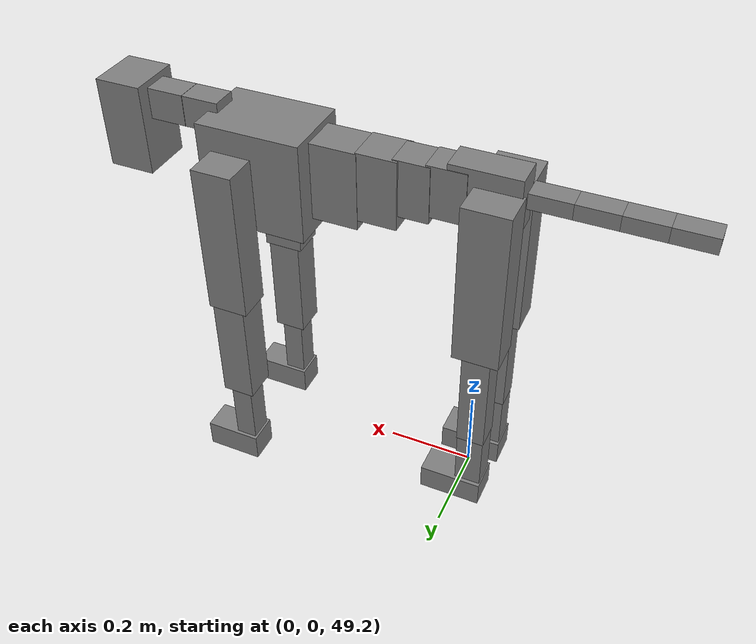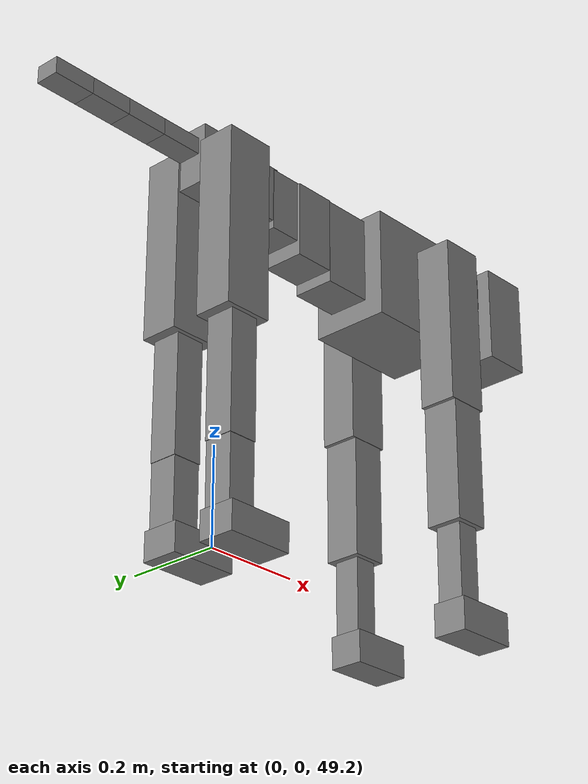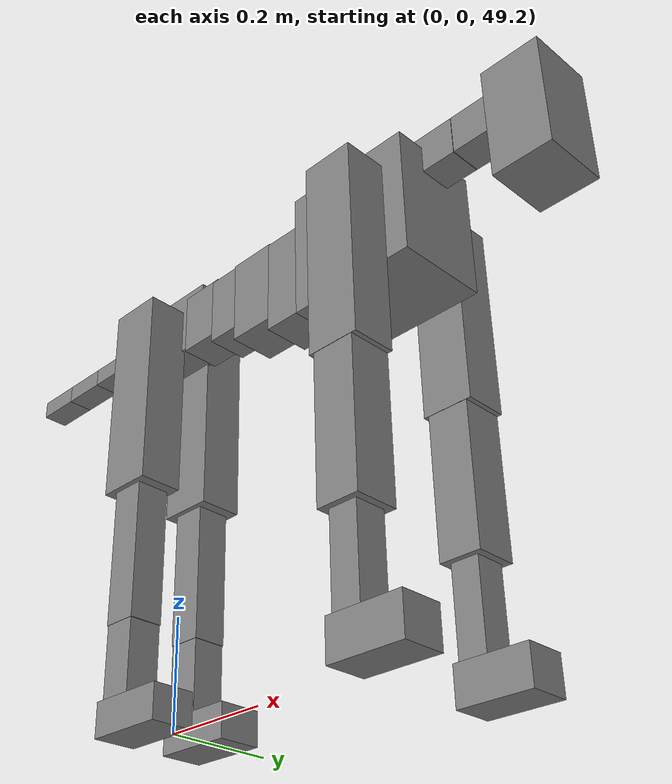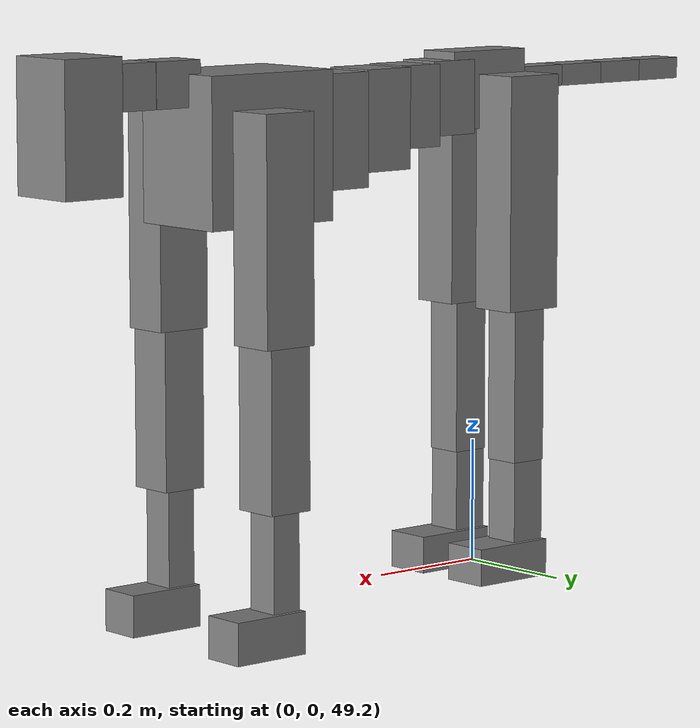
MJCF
<mujoco model="dog">

    <default>
        <joint armature="0.02" stiffness="1" damping="0.2" limited="true" />
        <geom condim="3" friction="1 0.05 0.05" margin="0.01" />
        <motor ctrllimited="true" ctrlrange="-1.0 1.0" forcelimited="true" gear="50" />
    </default>

    <compiler inertiafromgeom="true" angle="radian" />

    <option timestep="0.016" iterations="50" tolerance="1e-10" solver="Newton" jacobian="dense" cone="pyramidal" />

    <size nconmax="20000" njmax="60000" nstack="5000000" />
    <visual>
        <map force="0.1" zfar="30" />
        <rgba haze="0.15 0.25 0.35 1" />
        <quality shadowsize="2048" />
        <global offwidth="800" offheight="800" />
    </visual>

    <asset>
        <texture type="skybox" builtin="gradient" rgb1="0.3 0.5 0.7" rgb2="0 0 0" width="512" height="512" />
        <texture name="texplane" type="2d" builtin="checker" rgb1=".2 .3 .4" rgb2=".1 0.15 0.2" width="512" height="512" mark="cross" markrgb=".8 .8 .8" />
        <texture name="texgeom" type="cube" builtin="flat" mark="cross" width="127" height="1278" rgb1="0.8 0.6 0.4" rgb2="0.8 0.6 0.4" markrgb="1 1 1" random="0.01" />

        <material name="matplane" reflectance="0.3" texture="texplane" texrepeat="1 1" texuniform="true" />
        <material name="matgeom" texture="texgeom" texuniform="true" rgba="0.8 0.6 .4 1" />
    </asset>

    <worldbody>
        <geom name="floor" pos="0 0 0" size="0 0 .25" type="plane" material="matplane" condim="3" />

        <light directional="false" diffuse=".2 .2 .2" specular="0 0 0" pos="0 0 5" dir="0 0 -1" castshadow="false" />
        <light mode="targetbodycom" target="torso" directional="false" diffuse=".8 .8 .8" specular="0.3 0.3 0.3" pos="0 0 4.0" dir="0 0 -1" />

        <body name="root" pos="0 0 50">
            <freejoint name="root_1" />
            <geom type="box" pos="0 0 -0.02" size="0.0774  0.0358  0.063" density="2030" />

            <body name="spine1" pos="0.054 0 0">
                <joint name="spine1_y" axis="0 1 0" range="0 0.7" limited="true" />
                <geom type="box" pos="0.02375 0 -0.03" size="0.04375  0.0375  0.05985" density="2030" />

                <body name="spine2" pos="0.0612 0 0">
                    <joint name="spine2_y" axis="0 1 0" range="-0.15 0.15" limited="true" />
                    <geom type="box" pos="0.03555  0  -0.04" size="0.04055  0.039  0.06615" density="2030" />

                    <body name="spine3" pos="0.0730 0 0">
                        <joint name="spine3_y" axis="0 1 0" range="-0.15 0.15" limited="true" />
                        <geom type="box" pos="0.03555  0  -0.057" size="0.04555  0.0445  0.081" density="2030" />

                        <body name="spine4" pos="0.0780 0 0">
                            <joint name="spine4_y" axis="0 1 0" range="-0.15 0.15" limited="true" />
                            <geom type="box" pos="0.05265  0  -0.07" size="0.05265  0.045  0.09135" density="2030" />

                            <body name="torso" pos="0.1082 0 0">
                                <joint name="torso_y" axis="0 1 0" range="-0.15 0.15" limited="true" />
                                <geom type="box" pos="0.11925  0  -0.085" size="0.11925  0.085  0.11745" density="2030" />

                                <body name="neck1" pos="0.2160  0   0.0180">
                                    <joint name="neck1_y" axis="0 1 0" range="-1.2  -1" limited="true" />
                                    <geom type="box" pos="0.0423  0  0" size="0.0423  0.03  0.036" density="2325" />

                                    <body name="neck2" pos="0.0853  0  0">
                                        <joint name="neck2_y" axis="0 1 0" range="0.1  0" limited="true" />
                                        <geom type="box" pos="0.0423  0  0" size="0.0423  0.03  0.036" density="2325" />

                                        <body name="head" pos="0.0853  0  0">
                                            <joint name="head_y" axis="0 1 0" range="-0.3  -0.2" limited="true" />
                                            <geom type="box" pos="0.0531  0  -0.055" size="0.0531  0.06  0.1044" density="4030" />

                                        </body>
                                    </body>
                                </body>

                                <body name="front_shoulder" pos="0.156  0   -0.0480">
                                    <joint name="front_shoulder_y" axis="0 1 0" range="-1 1.5" limited="true" />
                                    <geom type="box" pos="0 0.13 -0.1517" size="0.0462  0.0395  0.1784" density="1158" />
                                    <geom type="box" pos="0 -0.13 -0.1517" size="0.0462  0.0395  0.1784" density="1158" />

                                    <body name="front_elbow" pos="0  0  -0.3034">
                                        <joint name="front_elbow_y" axis="0 1 0" range="-2 0" limited="true" />
                                        <geom type="box" pos="0 0.13 -0.1405" size="0.0378  0.0387  0.1405" density="1081" />
                                        <geom type="box" pos="0 -0.13 -0.1405" size="0.0378  0.0387  0.1405" density="1081" />

                                        <body name="front_wrist" pos="0  0  -0.2810">
                                            <joint name="front_wrist_y" axis="0 1 0" range="-0.2 0" limited="true" />
                                            <geom type="box" pos="0 0.13 -0.0853" size="0.0251  0.0279  0.0984" density="1664" />
                                            <geom type="box" pos="0 -0.13 -0.0853" size="0.0251  0.0279  0.0984" density="1664" />

                                            <body name="front_finger_end" pos="0  0  -0.1705">
                                                <joint name="front_finger_y" axis="0 1 0" range="-0.4 1" limited="true" />
                                                <geom type="box" pos="0.0361  0.13  -0.0187" size="0.0662  0.0361  0.0337" density="1515" />
                                                <geom type="box" pos="0.0361  -0.13  -0.0187" size="0.0662  0.0361  0.0337" density="1515" />

                                            </body>

                                        </body>
                                    </body>
                                </body>

                            </body>
                        </body>
                    </body>
                </body>
            </body>

            <body name="back_hip" pos="-0.03 0 -0.018">
                <joint name="back_hip_y" axis="0 1 0" range="-1.5 0.3" limited="true" />
                <geom type="box" pos="0 0.07 -0.1674" size="0.0520  0.0408  0.1902" density="1154" />
                <geom type="box" pos="0 -0.07 -0.1674" size="0.0520  0.0408  0.1902" density="1154" />

                <body name="back_knee" pos="0  0  -0.3349">
                    <joint name="back_knee_y" axis="0 1 0" range="0 2.8" limited="true" />
                    <geom type="box" pos="0 0.07 -0.1284" size="0.0317  0.0312  0.1440" density="1227" />
                    <geom type="box" pos="0 -0.07 -0.1284" size="0.0317  0.0312  0.1440" density="1227" />

                    <body name="back_ankle" pos="0  0  -0.2568">
                        <joint name="back_ankle_y" axis="0 1 0" range="-2.2 0" limited="true" />
                        <geom type="box" pos="0 0.07 -0.0812" size="0.0302  0.0302  0.0924" density="1284" />
                        <geom type="box" pos="0 -0.07 -0.0812" size="0.0302  0.0302  0.0924" density="1284" />

                        <body name="back_toe_end" pos="0  0  -0.1623">
                            <joint name="back_toe_y" axis="0 1 0" range="-0.4 1" limited="true" />
                            <geom type="box" pos="0.0393  0.07  -0.0152" size="0.0721  0.0393  0.0302" density="1515" />
                            <geom type="box" pos="0.0393  -0.07  -0.0152" size="0.0721  0.0393  0.0302" density="1515" />

                        </body>
                    </body>
                </body>
            </body>

            <body name="tail1" pos="-0.074 0 -0.006">
                <joint name="tail1_y" axis="0 1 0" range="-0.2 0.2" limited="true" />
                <geom type="box" pos="-0.0536  0  0" size="0.045  0.025  0.0175" density="1587" />

                <body name="tail2" pos="-0.09 0 0">
                    <joint name="tail2_y" axis="0 1 0" range="-0.2 0.2" limited="true" />
                    <geom type="box" pos="-0.0536  0  0" size="0.045  0.025  0.0175" density="1587" />

                    <body name="tail3" pos="-0.09 0 0">
                        <joint name="tail3_y" axis="0 1 0" range="-0.2 0.2" limited="true" />
                        <geom type="box" pos="-0.0536  0  0" size="0.045  0.025  0.0175" density="1587" />

                        <body name="tail4" pos="-0.09 0 0">
                            <joint name="tail4_y" axis="0 1 0" range="-0.2 0.2" limited="true" />
                            <geom type="box" pos="-0.0536  0  0" size="0.045  0.025  0.0175" density="1587" />

                        </body>
                    </body>
                </body>
            </body>
        </body>
    </worldbody>

    <actuator>
        <motor joint="spine1_y" forcerange="-150 150     " />
        <motor joint="spine2_y" forcerange="-150 150     " />
        <motor joint="spine3_y" forcerange="-150 150     " />
        <motor joint="spine4_y" forcerange="-150 150     " />
        <motor joint="torso_y" forcerange="-150 150     " />
        <motor joint="neck1_y" forcerange="-100 100       " />
        <motor joint="neck2_y" forcerange="-100 100       " />
        <motor joint="head_y" forcerange="-150 150       " />
        <motor joint="front_shoulder_y" forcerange="-193.31 170.02" />
        <motor joint="front_elbow_y" forcerange="-198.04 183.29" />
        <motor joint="front_wrist_y" forcerange="-103.26 120.04" />
        <motor joint="front_finger_y" forcerange="-61.78 90.73" />
        <motor joint="back_hip_y" forcerange="-391.33 352.77" />
        <motor joint="back_knee_y" forcerange="-330.50 323.75" />
        <motor joint="back_angle_y" forcerange="-205.80 177.13" />
        <motor joint="back_toe_y" forcerange="-138.95 95.48" />
        <motor joint="tail1_y" forcerange="-50 50     " />
        <motor joint="tail2_y" forcerange="-50 50     " />
        <motor joint="tail3_y" forcerange="-50 50     " />
        <motor joint="tail4_y" forcerange="-50 50     " />
    </actuator>
</mujoco>
